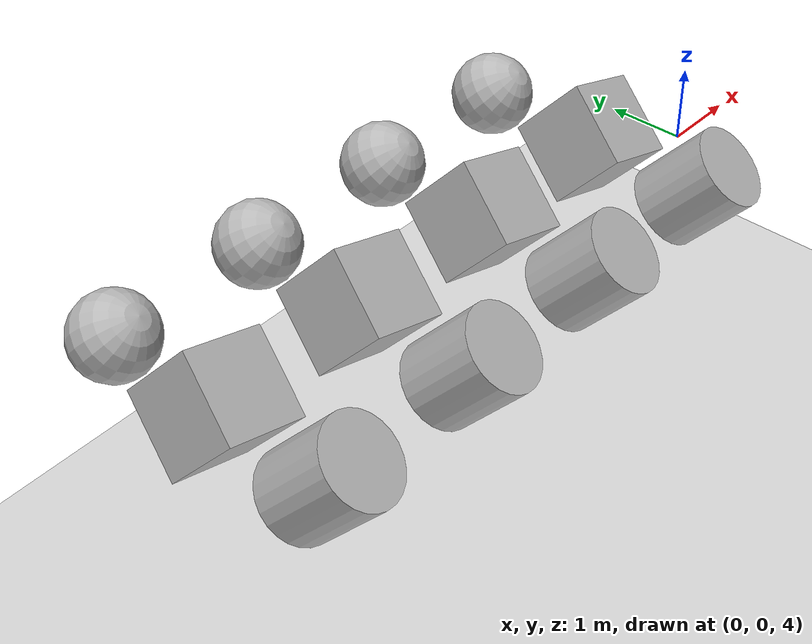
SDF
<?xml version="1.0" ?>
<sdf version="1.4">
  <world name="default">
    <include>
      <uri>model://ground_plane</uri>
    </include>
    <include>
      <uri>model://sun</uri>
    </include>

    <physics type="ode">
      <gravity>0.0 0.0 -9.81</gravity>
      <ode>
        <solver>
          <type>quick</type>
          <iters>1000</iters>
          <sor>1.2</sor>
        </solver>
        <constraints>
          <cfm>0</cfm>
          <erp>0.2</erp>
          <contact_max_correcting_vel>0.0</contact_max_correcting_vel>
          <contact_surface_layer>0.00</contact_surface_layer>
        </constraints>
      </ode>
      <max_step_size>0.001</max_step_size>
    </physics>

    <model name="model_1">
      <pose>-2 0 5.0 0 0 0</pose>
      <link name="box_link_1">
        <inertial>
          <pose>0 0 0  0 0 0</pose>
          <mass>1000.0</mass>
          <inertia>
            <ixx>100.0</ixx> <ixy>000.0</ixy> <ixz>000.0</ixz>
            <iyy>100.0</iyy> <iyz>000.0</iyz>
            <izz>100.0</izz>
          </inertia>
        </inertial>
        <collision name="collision">
          <pose>0 0 0 0.7 0.3 0</pose>
          <geometry>
            <box>
              <size>1 1 1</size>
            </box>
          </geometry>
          <surface>
            <friction>
              <ode>
                <mu>1.5</mu>
                <mu2>1.5</mu2>
              </ode>
            </friction>
            <contact>
              <ode>
                <kp>100000000</kp>
                <kd>100</kd>
              </ode>
            </contact>
          </surface>
        </collision>
        <visual name="visual">
          <pose>0 0 0 0.7 0.3 0</pose>
          <geometry>
            <box>
              <size>1 1 1</size>
            </box>
          </geometry>
          <material>
            <script>Gazebo/WoodPallet</script>
          </material>
        </visual>
      </link>
      <link name="sphere_link_1">
        <pose>0 1.5 0 0 0 0</pose>
        <inertial>
          <pose>0 -1.5 0 0 0 0</pose>
          <mass>1.0</mass>
          <inertia>
            <ixx>0.1</ixx> <ixy>000.0</ixy> <ixz>000.0</ixz>
            <iyy>0.1</iyy> <iyz>000.0</iyz>
            <izz>0.1</izz>
          </inertia>
        </inertial>
        <collision name="collision">
          <pose>0 0 0 0.7 0.3 0</pose>
          <geometry>
            <sphere>
              <radius>0.5</radius>
            </sphere>
          </geometry>
          <surface>
            <friction>
              <ode>
                <mu>1.5</mu>
                <mu2>1.5</mu2>
              </ode>
            </friction>
            <contact>
              <ode>
                <kp>100000000</kp>
                <kd>100</kd>
              </ode>
            </contact>
          </surface>
        </collision>
        <visual name="visual">
          <pose>0 0 0 0.7 0.3 0</pose>
          <geometry>
            <sphere>
              <radius>0.5</radius>
            </sphere>
          </geometry>
          <material>
            <script>Gazebo/WoodPallet</script>
          </material>
        </visual>
      </link>
      <link name="cylinder_link_1">
        <pose>0 -1.5 0 0 0 0</pose>
        <inertial>
          <pose>0 1.5 0 0 0 0</pose>
          <mass>1.0</mass>
          <inertia>
            <ixx>0.1</ixx> <ixy>000.0</ixy> <ixz>000.0</ixz>
            <iyy>0.1</iyy> <iyz>000.0</iyz>
            <izz>0.1</izz>
          </inertia>
        </inertial>
        <collision name="collision">
          <pose>0 0 0 0.7 0.3 0</pose>
          <geometry>
            <cylinder>
              <radius>0.5</radius>
              <length>1.0</length>
            </cylinder>
          </geometry>
          <surface>
            <friction>
              <ode>
                <mu>1.5</mu>
                <mu2>1.5</mu2>
              </ode>
            </friction>
            <contact>
              <ode>
                <kp>100000000</kp>
                <kd>100</kd>
              </ode>
            </contact>
          </surface>
        </collision>
        <visual name="visual">
          <pose>0 0 0 0.7 0.3 0</pose>
          <geometry>
            <cylinder>
              <radius>0.5</radius>
              <length>1.0</length>
            </cylinder>
          </geometry>
          <material>
            <script>Gazebo/WoodPallet</script>
          </material>
        </visual>
      </link>
      <joint name="joint_1_1" type="revolute">
        <parent>sphere_link_1</parent>
        <child>box_link_1</child>
        <axis>
          <xyz>0 1 0</xyz>
        </axis>
      </joint>
      <joint name="joint_2_1" type="revolute">
        <parent>cylinder_link_1</parent>
        <child>box_link_1</child>
        <axis>
          <xyz>0 0 1</xyz>
        </axis>
      </joint>

      <link name="box_link_2">
        <inertial>
          <pose>0 0 0  0 0 0</pose>
          <mass>1000.0</mass>
          <inertia>
            <ixx>100.0</ixx> <ixy>000.0</ixy> <ixz>000.0</ixz>
            <iyy>100.0</iyy> <iyz>000.0</iyz>
            <izz>100.0</izz>
          </inertia>
        </inertial>
        <collision name="collision">
          <pose>0 0 0 0.7 0.3 0</pose>
          <geometry>
            <box>
              <size>1 1 1</size>
            </box>
          </geometry>
          <surface>
            <friction>
              <ode>
                <mu>1.5</mu>
                <mu2>1.5</mu2>
              </ode>
            </friction>
            <contact>
              <ode>
                <kp>100000000</kp>
                <kd>100</kd>
              </ode>
            </contact>
          </surface>
        </collision>
        <visual name="visual">
          <pose>0 0 0 0.7 0.3 0</pose>
          <geometry>
            <box>
              <size>1 1 1</size>
            </box>
          </geometry>
          <material>
            <script>Gazebo/WoodPallet</script>
          </material>
        </visual>
      </link>
      <link name="sphere_link_2">
        <pose>0 1.5 0 0 0 0</pose>
        <inertial>
          <pose>0 -1.5 0 0 0 0</pose>
          <mass>1.0</mass>
          <inertia>
            <ixx> 0.1</ixx> <ixy>000.0</ixy> <ixz>000.0</ixz>
            <iyy> 0.1</iyy> <iyz>000.0</iyz>
            <izz> 0.1</izz>
          </inertia>
        </inertial>
        <collision name="collision">
          <pose>0 0 0 0.7 0.3 0</pose>
          <geometry>
            <sphere>
              <radius>0.5</radius>
            </sphere>
          </geometry>
          <surface>
            <friction>
              <ode>
                <mu>1.5</mu>
                <mu2>1.5</mu2>
              </ode>
            </friction>
            <contact>
              <ode>
                <kp>100000000</kp>
                <kd>100</kd>
              </ode>
            </contact>
          </surface>
        </collision>
        <visual name="visual">
          <pose>0 0 0 0.7 0.3 0</pose>
          <geometry>
            <sphere>
              <radius>0.5</radius>
            </sphere>
          </geometry>
          <material>
            <script>Gazebo/WoodPallet</script>
          </material>
        </visual>
      </link>
      <link name="cylinder_link_2">
        <pose>0 -1.5 0 0 0 0</pose>
        <inertial>
          <pose>0 1.5 0 0 0 0</pose>
          <mass>1.0</mass>
          <inertia>
            <ixx>0.1</ixx> <ixy>000.0</ixy> <ixz>000.0</ixz>
            <iyy>0.1</iyy> <iyz>000.0</iyz>
            <izz>0.1</izz>
          </inertia>
        </inertial>
        <collision name="collision">
          <pose>0 0 0 0.7 0.3 0</pose>
          <geometry>
            <cylinder>
              <radius>0.5</radius>
              <length>1.0</length>
            </cylinder>
          </geometry>
          <surface>
            <friction>
              <ode>
                <mu>1.5</mu>
                <mu2>1.5</mu2>
              </ode>
            </friction>
            <contact>
              <ode>
                <kp>100000000</kp>
                <kd>100</kd>
              </ode>
            </contact>
          </surface>
        </collision>
        <visual name="visual">
          <pose>0 0 0 0.7 0.3 0</pose>
          <geometry>
            <cylinder>
              <radius>0.5</radius>
              <length>1.0</length>
            </cylinder>
          </geometry>
          <material>
            <script>Gazebo/WoodPallet</script>
          </material>
        </visual>
      </link>
      <joint name="joint_1_2" type="revolute">
        <parent>sphere_link_2</parent>
        <child>box_link_2</child>
        <axis>
          <xyz>0 1 0</xyz>
        </axis>
      </joint>
      <joint name="joint_2_2" type="revolute">
        <parent>cylinder_link_2</parent>
        <child>box_link_2</child>
        <axis>
          <xyz>0 0 1</xyz>
        </axis>
      </joint>
    </model>

    <model name="model_2">
      <pose>-4 0 5.0 0 0 0</pose>
      <link name="box_link_21">
        <inertial>
          <pose>0 0 0  0 0 0</pose>
          <mass>1000.0</mass>
          <inertia>
            <ixx>100.0</ixx> <ixy>000.0</ixy> <ixz>000.0</ixz>
            <iyy>100.0</iyy> <iyz>000.0</iyz>
            <izz>100.0</izz>
          </inertia>
        </inertial>
        <collision name="collision">
          <pose>0 0 0 0.7 0.3 0</pose>
          <geometry>
            <box>
              <size>1 1 1</size>
            </box>
          </geometry>
          <surface>
            <friction>
              <ode>
                <mu>1.5</mu>
                <mu2>1.5</mu2>
              </ode>
            </friction>
            <contact>
              <ode>
                <kp>100000000</kp>
                <kd>100</kd>
              </ode>
            </contact>
          </surface>
        </collision>
        <visual name="visual">
          <pose>0 0 0 0.7 0.3 0</pose>
          <geometry>
            <box>
              <size>1 1 1</size>
            </box>
          </geometry>
          <material>
            <script>Gazebo/WoodPallet</script>
          </material>
        </visual>
      </link>
      <link name="sphere_link_21">
        <pose>0 1.5 0 0 0 0</pose>
        <inertial>
          <pose>0 -1.5 0 0 0 0</pose>
          <mass>1.0</mass>
          <inertia>
            <ixx>0.1</ixx> <ixy>000.0</ixy> <ixz>000.0</ixz>
            <iyy>0.1</iyy> <iyz>000.0</iyz>
            <izz>0.1</izz>
          </inertia>
        </inertial>
        <collision name="collision">
          <pose>0 0 0 0.7 0.3 0</pose>
          <geometry>
            <sphere>
              <radius>0.5</radius>
            </sphere>
          </geometry>
          <surface>
            <friction>
              <ode>
                <mu>1.5</mu>
                <mu2>1.5</mu2>
              </ode>
            </friction>
            <contact>
              <ode>
                <kp>100000000</kp>
                <kd>100</kd>
              </ode>
            </contact>
          </surface>
        </collision>
        <visual name="visual">
          <pose>0 0 0 0.7 0.3 0</pose>
          <geometry>
            <sphere>
              <radius>0.5</radius>
            </sphere>
          </geometry>
          <material>
            <script>Gazebo/WoodPallet</script>
          </material>
        </visual>
      </link>
      <link name="cylinder_link_21">
        <pose>0 -1.5 0 0 0 0</pose>
        <inertial>
          <pose>0 1.5 0 0 0 0</pose>
          <mass>1.0</mass>
          <inertia>
            <ixx>0.1</ixx> <ixy>000.0</ixy> <ixz>000.0</ixz>
            <iyy>0.1</iyy> <iyz>000.0</iyz>
            <izz>0.1</izz>
          </inertia>
        </inertial>
        <collision name="collision">
          <pose>0 0 0 0.7 0.3 0</pose>
          <geometry>
            <cylinder>
              <radius>0.5</radius>
              <length>1.0</length>
            </cylinder>
          </geometry>
          <surface>
            <friction>
              <ode>
                <mu>1.5</mu>
                <mu2>1.5</mu2>
              </ode>
            </friction>
            <contact>
              <ode>
                <kp>100000000</kp>
                <kd>100</kd>
              </ode>
            </contact>
          </surface>
        </collision>
        <visual name="visual">
          <pose>0 0 0 0.7 0.3 0</pose>
          <geometry>
            <cylinder>
              <radius>0.5</radius>
              <length>1.0</length>
            </cylinder>
          </geometry>
          <material>
            <script>Gazebo/WoodPallet</script>
          </material>
        </visual>
      </link>
      <joint name="joint_1" type="revolute">
        <parent>sphere_link_21</parent>
        <child>box_link_21</child>
        <axis>
          <xyz>0 1 0</xyz>
        </axis>
      </joint>
      <joint name="joint_2" type="revolute">
        <parent>cylinder_link_21</parent>
        <child>box_link_21</child>
        <axis>
          <xyz>0 0 1</xyz>
        </axis>
      </joint>
    </model>

    <model name="model_3">
      <pose>-6 0 5.0 0 0 0</pose>
      <link name="box_link_31">
        <inertial>
          <pose>0 0 0  0 0 0</pose>
          <mass>1000.0</mass>
          <inertia>
            <ixx>100.0</ixx> <ixy>000.0</ixy> <ixz>000.0</ixz>
            <iyy>100.0</iyy> <iyz>000.0</iyz>
            <izz>100.0</izz>
          </inertia>
        </inertial>
        <collision name="collision">
          <pose>0 0 0 0.7 0.3 0</pose>
          <geometry>
            <box>
              <size>1 1 1</size>
            </box>
          </geometry>
          <surface>
            <friction>
              <ode>
                <mu>1.5</mu>
                <mu2>1.5</mu2>
              </ode>
            </friction>
            <contact>
              <ode>
                <kp>100000000</kp>
                <kd>100</kd>
              </ode>
            </contact>
          </surface>
        </collision>
        <visual name="visual">
          <pose>0 0 0 0.7 0.3 0</pose>
          <geometry>
            <box>
              <size>1 1 1</size>
            </box>
          </geometry>
          <material>
            <script>Gazebo/WoodPallet</script>
          </material>
        </visual>
      </link>
      <link name="sphere_link_31">
        <pose>0 1.5 0 0 0 0</pose>
        <inertial>
          <pose>0 -1.5 0 0 0 0</pose>
          <mass>1.0</mass>
          <inertia>
            <ixx>0.1</ixx> <ixy>000.0</ixy> <ixz>000.0</ixz>
            <iyy>0.1</iyy> <iyz>000.0</iyz>
            <izz>0.1</izz>
          </inertia>
        </inertial>
        <collision name="collision">
          <pose>0 0 0 0.7 0.3 0</pose>
          <geometry>
            <sphere>
              <radius>0.5</radius>
            </sphere>
          </geometry>
          <surface>
            <friction>
              <ode>
                <mu>1.5</mu>
                <mu2>1.5</mu2>
              </ode>
            </friction>
            <contact>
              <ode>
                <kp>100000000</kp>
                <kd>100</kd>
              </ode>
            </contact>
          </surface>
        </collision>
        <visual name="visual">
          <pose>0 0 0 0.7 0.3 0</pose>
          <geometry>
            <sphere>
              <radius>0.5</radius>
            </sphere>
          </geometry>
          <material>
            <script>Gazebo/WoodPallet</script>
          </material>
        </visual>
      </link>
      <link name="cylinder_link_31">
        <pose>0 -1.5 0 0 0 0</pose>
        <inertial>
          <pose>0 1.5 0 0 0 0</pose>
          <mass>1.0</mass>
          <inertia>
            <ixx>0.1</ixx> <ixy>000.0</ixy> <ixz>000.0</ixz>
            <iyy>0.1</iyy> <iyz>000.0</iyz>
            <izz>0.1</izz>
          </inertia>
        </inertial>
        <collision name="collision">
          <pose>0 0 0 0.7 0.3 0</pose>
          <geometry>
            <cylinder>
              <radius>0.5</radius>
              <length>1.0</length>
            </cylinder>
          </geometry>
          <surface>
            <friction>
              <ode>
                <mu>1.5</mu>
                <mu2>1.5</mu2>
              </ode>
            </friction>
            <contact>
              <ode>
                <kp>100000000</kp>
                <kd>100</kd>
              </ode>
            </contact>
          </surface>
        </collision>
        <visual name="visual">
          <pose>0 0 0 0.7 0.3 0</pose>
          <geometry>
            <cylinder>
              <radius>0.5</radius>
              <length>1.0</length>
            </cylinder>
          </geometry>
          <material>
            <script>Gazebo/WoodPallet</script>
          </material>
        </visual>
      </link>
      <joint name="joint_1" type="revolute">
        <parent>sphere_link_31</parent>
        <child>box_link_31</child>
        <axis>
          <xyz>0 1 0</xyz>
        </axis>
      </joint>
      <joint name="joint_2" type="revolute">
        <parent>cylinder_link_31</parent>
        <child>box_link_31</child>
        <axis>
          <xyz>0 0 1</xyz>
        </axis>
      </joint>
    </model>

    <model name="model_51">
      <pose>-8 0 5.0 0 0 0</pose>
      <link name="box_link_51">
        <inertial>
          <pose>0 0 0  0 0 0</pose>
          <mass>1000.0</mass>
          <inertia>
            <ixx>100.0</ixx> <ixy>000.0</ixy> <ixz>000.0</ixz>
            <iyy>100.0</iyy> <iyz>000.0</iyz>
            <izz>100.0</izz>
          </inertia>
        </inertial>
        <collision name="collision">
          <pose>0 0 0 0.7 0.3 0</pose>
          <geometry>
            <box>
              <size>1 1 1</size>
            </box>
          </geometry>
          <surface>
            <friction>
              <ode>
                <mu>1.5</mu>
                <mu2>1.5</mu2>
              </ode>
            </friction>
            <contact>
              <ode>
                <kp>100000000</kp>
                <kd>100</kd>
              </ode>
            </contact>
          </surface>
        </collision>
        <visual name="visual">
          <pose>0 0 0 0.7 0.3 0</pose>
          <geometry>
            <box>
              <size>1 1 1</size>
            </box>
          </geometry>
          <material>
            <script>Gazebo/WoodPallet</script>
          </material>
        </visual>
      </link>
      <link name="sphere_link_51">
        <pose>0 1.5 0 0 0 0</pose>
        <inertial>
          <pose>0 -1.5 0 0 0 0</pose>
          <mass>1.0</mass>
          <inertia>
            <ixx>0.1</ixx> <ixy>000.0</ixy> <ixz>000.0</ixz>
            <iyy>0.1</iyy> <iyz>000.0</iyz>
            <izz>0.1</izz>
          </inertia>
        </inertial>
        <collision name="collision">
          <pose>0 0 0 0.7 0.3 0</pose>
          <geometry>
            <sphere>
              <radius>0.5</radius>
            </sphere>
          </geometry>
          <surface>
            <friction>
              <ode>
                <mu>1.5</mu>
                <mu2>1.5</mu2>
              </ode>
            </friction>
            <contact>
              <ode>
                <kp>100000000</kp>
                <kd>100</kd>
              </ode>
            </contact>
          </surface>
        </collision>
        <visual name="visual">
          <pose>0 0 0 0.7 0.3 0</pose>
          <geometry>
            <sphere>
              <radius>0.5</radius>
            </sphere>
          </geometry>
          <material>
            <script>Gazebo/WoodPallet</script>
          </material>
        </visual>
      </link>
      <link name="cylinder_link_51">
        <pose>0 -1.5 0 0 0 0</pose>
        <inertial>
          <pose>0 1.5 0 0 0 0</pose>
          <mass>1.0</mass>
          <inertia>
            <ixx>0.1</ixx> <ixy>000.0</ixy> <ixz>000.0</ixz>
            <iyy>0.1</iyy> <iyz>000.0</iyz>
            <izz>0.1</izz>
          </inertia>
        </inertial>
        <collision name="collision">
          <pose>0 0 0 0.7 0.3 0</pose>
          <geometry>
            <cylinder>
              <radius>0.5</radius>
              <length>1.0</length>
            </cylinder>
          </geometry>
          <surface>
            <friction>
              <ode>
                <mu>1.5</mu>
                <mu2>1.5</mu2>
              </ode>
            </friction>
            <contact>
              <ode>
                <kp>100000000</kp>
                <kd>100</kd>
              </ode>
            </contact>
          </surface>
        </collision>
        <visual name="visual">
          <pose>0 0 0 0.7 0.3 0</pose>
          <geometry>
            <cylinder>
              <radius>0.5</radius>
              <length>1.0</length>
            </cylinder>
          </geometry>
          <material>
            <script>Gazebo/WoodPallet</script>
          </material>
        </visual>
      </link>
      <joint name="joint_5_1_1" type="revolute">
        <parent>sphere_link_51</parent>
        <child>box_link_51</child>
        <axis>
          <xyz>0 1 0</xyz>
        </axis>
      </joint>
      <joint name="joint_5_1_2" type="revolute">
        <parent>cylinder_link_51</parent>
        <child>box_link_51</child>
        <axis>
          <xyz>0 0 1</xyz>
        </axis>
      </joint>

      <link name="box_link_52">
        <inertial>
          <pose>0 0 0  0 0 0</pose>
          <mass>1000.0</mass>
          <inertia>
            <ixx>100.0</ixx> <ixy>000.0</ixy> <ixz>000.0</ixz>
            <iyy>100.0</iyy> <iyz>000.0</iyz>
            <izz>100.0</izz>
          </inertia>
        </inertial>
        <collision name="collision">
          <pose>0 0 0 0.7 0.3 0</pose>
          <geometry>
            <box>
              <size>1 1 1</size>
            </box>
          </geometry>
          <surface>
            <friction>
              <ode>
                <mu>1.5</mu>
                <mu2>1.5</mu2>
              </ode>
            </friction>
            <contact>
              <ode>
                <kp>100000000</kp>
                <kd>100</kd>
              </ode>
            </contact>
          </surface>
        </collision>
        <visual name="visual">
          <pose>0 0 0 0.7 0.3 0</pose>
          <geometry>
            <box>
              <size>1 1 1</size>
            </box>
          </geometry>
          <material>
            <script>Gazebo/WoodPallet</script>
          </material>
        </visual>
      </link>
      <link name="sphere_link_52">
        <pose>0 1.5 0 0 0 0</pose>
        <inertial>
          <pose>0 -1.5 0 0 0 0</pose>
          <mass>1.0</mass>
          <inertia>
            <ixx> 0.1</ixx> <ixy>000.0</ixy> <ixz>000.0</ixz>
            <iyy> 0.1</iyy> <iyz>000.0</iyz>
            <izz> 0.1</izz>
          </inertia>
        </inertial>
        <collision name="collision">
          <pose>0 0 0 0.7 0.3 0</pose>
          <geometry>
            <sphere>
              <radius>0.5</radius>
            </sphere>
          </geometry>
          <surface>
            <friction>
              <ode>
                <mu>1.5</mu>
                <mu2>1.5</mu2>
              </ode>
            </friction>
            <contact>
              <ode>
                <kp>100000000</kp>
                <kd>100</kd>
              </ode>
            </contact>
          </surface>
        </collision>
        <visual name="visual">
          <pose>0 0 0 0.7 0.3 0</pose>
          <geometry>
            <sphere>
              <radius>0.5</radius>
            </sphere>
          </geometry>
          <material>
            <script>Gazebo/WoodPallet</script>
          </material>
        </visual>
      </link>
      <link name="cylinder_link_52">
        <pose>0 -1.5 0 0 0 0</pose>
        <inertial>
          <pose>0 1.5 0 0 0 0</pose>
          <mass>1.0</mass>
          <inertia>
            <ixx>0.1</ixx> <ixy>000.0</ixy> <ixz>000.0</ixz>
            <iyy>0.1</iyy> <iyz>000.0</iyz>
            <izz>0.1</izz>
          </inertia>
        </inertial>
        <collision name="collision">
          <pose>0 0 0 0.7 0.3 0</pose>
          <geometry>
            <cylinder>
              <radius>0.5</radius>
              <length>1.0</length>
            </cylinder>
          </geometry>
          <surface>
            <friction>
              <ode>
                <mu>1.5</mu>
                <mu2>1.5</mu2>
              </ode>
            </friction>
            <contact>
              <ode>
                <kp>100000000</kp>
                <kd>100</kd>
              </ode>
            </contact>
          </surface>
        </collision>
        <visual name="visual">
          <pose>0 0 0 0.7 0.3 0</pose>
          <geometry>
            <cylinder>
              <radius>0.5</radius>
              <length>1.0</length>
            </cylinder>
          </geometry>
          <material>
            <script>Gazebo/WoodPallet</script>
          </material>
        </visual>
      </link>
      <joint name="joint_5_2_1" type="revolute">
        <parent>sphere_link_52</parent>
        <child>box_link_52</child>
        <axis>
          <xyz>0 1 0</xyz>
        </axis>
      </joint>
      <joint name="joint_5_2_2" type="revolute">
        <parent>cylinder_link_52</parent>
        <child>box_link_52</child>
        <axis>
          <xyz>0 0 1</xyz>
        </axis>
      </joint>
    </model>

  </world>
</sdf>
